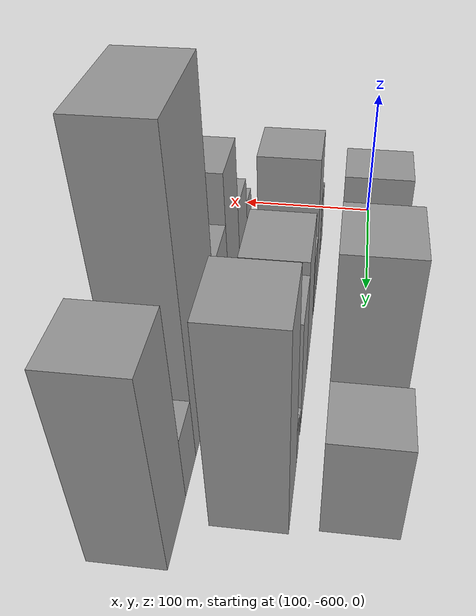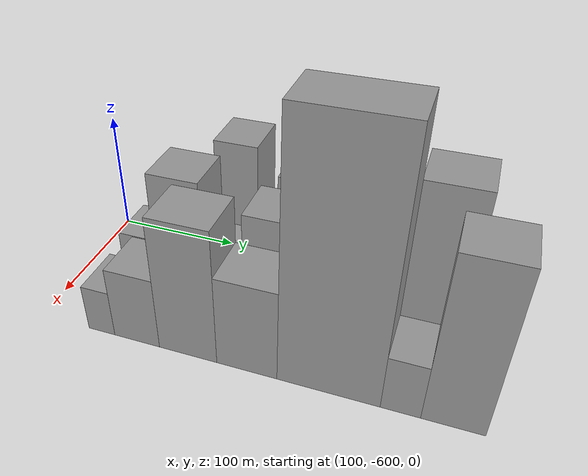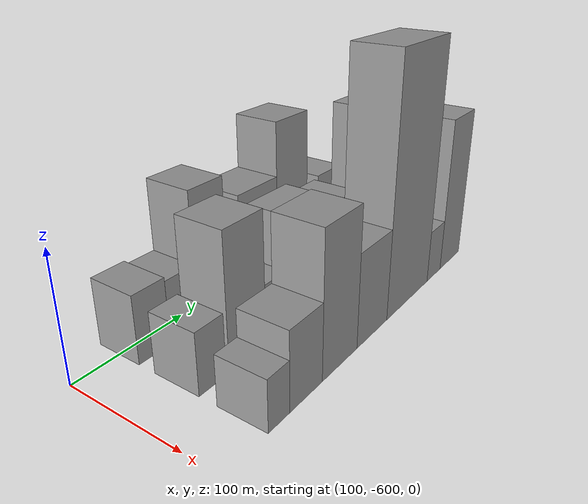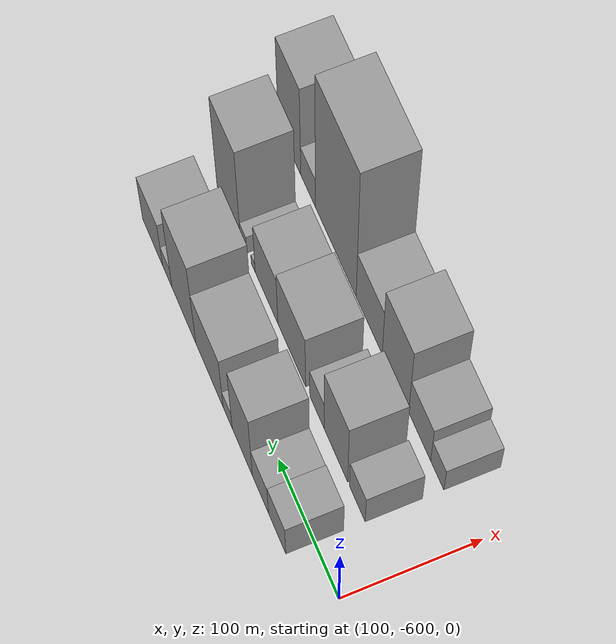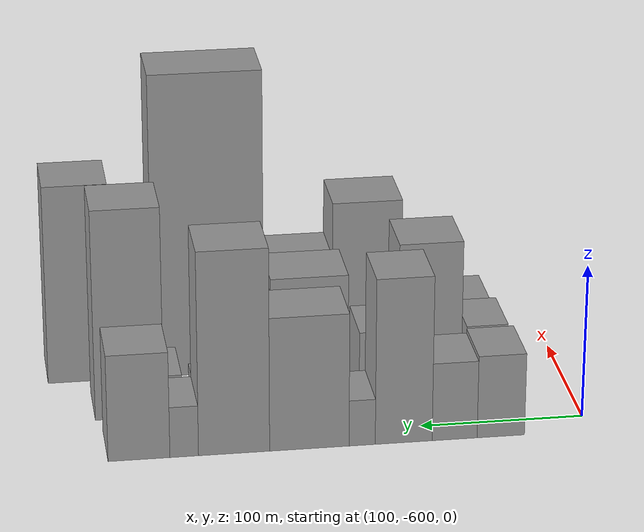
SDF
<sdf version="1.6">
 <world name="default">
  <model name="building_1">
   <static>1</static>
   <pose>100.0000 -545.5003 0 0.000000 0.000000 0.000000</pose>
   <link name="link">
    <pose>0 0 27.00 0 0 0</pose>
    <collision name="collision"><geometry><box><size>40.0000 28.9993 54.0000</size></box></geometry></collision>
    <visual name="visual">
     <cast_shadows>0</cast_shadows>
     <geometry><box><size>40.0000 28.9993 54.0000</size></box></geometry>
     <material>
      <script>
       <uri>model://grey_wall/materials/scripts</uri>
       <uri>model://grey_wall/materials/textures</uri>
       <name>vrc/grey_wall</name>
      </script>
     </material>
    </visual>
   </link>
  </model>
  <model name="building_2">
   <static>1</static>
   <pose>100.0000 -517.2635 0 0.000000 0.000000 0.000000</pose>
   <link name="link">
    <pose>0 0 25.50 0 0 0</pose>
    <collision name="collision"><geometry><box><size>40.0000 27.4744 51.0000</size></box></geometry></collision>
    <visual name="visual">
     <cast_shadows>0</cast_shadows>
     <geometry><box><size>40.0000 27.4744 51.0000</size></box></geometry>
     <material>
      <script>
       <uri>model://grey_wall/materials/scripts</uri>
       <uri>model://grey_wall/materials/textures</uri>
       <name>vrc/grey_wall</name>
      </script>
     </material>
    </visual>
   </link>
  </model>
  <model name="building_3">
   <static>1</static>
   <pose>100.0000 -486.2706 0 0.000000 0.000000 0.000000</pose>
   <link name="link">
    <pose>0 0 54.00 0 0 0</pose>
    <collision name="collision"><geometry><box><size>40.0000 34.5114 108.0000</size></box></geometry></collision>
    <visual name="visual">
     <cast_shadows>0</cast_shadows>
     <geometry><box><size>40.0000 34.5114 108.0000</size></box></geometry>
     <material>
      <script>
       <uri>model://grey_wall/materials/scripts</uri>
       <uri>model://grey_wall/materials/textures</uri>
       <name>vrc/grey_wall</name>
      </script>
     </material>
    </visual>
   </link>
  </model>
  <model name="building_4">
   <static>1</static>
   <pose>100.0000 -461.0871 0 0.000000 0.000000 0.000000</pose>
   <link name="link">
    <pose>0 0 15.00 0 0 0</pose>
    <collision name="collision"><geometry><box><size>40.0000 15.8557 30.0000</size></box></geometry></collision>
    <visual name="visual">
     <cast_shadows>0</cast_shadows>
     <geometry><box><size>40.0000 15.8557 30.0000</size></box></geometry>
     <material>
      <script>
       <uri>model://grey_wall/materials/scripts</uri>
       <uri>model://grey_wall/materials/textures</uri>
       <name>vrc/grey_wall</name>
      </script>
     </material>
    </visual>
   </link>
  </model>
  <model name="building_5">
   <static>1</static>
   <pose>100.0000 -429.2279 0 0.000000 0.000000 0.000000</pose>
   <link name="link">
    <pose>0 0 43.50 0 0 0</pose>
    <collision name="collision"><geometry><box><size>40.0000 47.8626 87.0000</size></box></geometry></collision>
    <visual name="visual">
     <cast_shadows>0</cast_shadows>
     <geometry><box><size>40.0000 47.8626 87.0000</size></box></geometry>
     <material>
      <script>
       <uri>model://grey_wall/materials/scripts</uri>
       <uri>model://grey_wall/materials/textures</uri>
       <name>vrc/grey_wall</name>
      </script>
     </material>
    </visual>
   </link>
  </model>
  <model name="building_6">
   <static>1</static>
   <pose>100.0000 -384.0020 0 0.000000 0.000000 0.000000</pose>
   <link name="link">
    <pose>0 0 66.00 0 0 0</pose>
    <collision name="collision"><geometry><box><size>40.0000 42.5892 132.0000</size></box></geometry></collision>
    <visual name="visual">
     <cast_shadows>0</cast_shadows>
     <geometry><box><size>40.0000 42.5892 132.0000</size></box></geometry>
     <material>
      <script>
       <uri>model://grey_wall/materials/scripts</uri>
       <uri>model://grey_wall/materials/textures</uri>
       <name>vrc/grey_wall</name>
      </script>
     </material>
    </visual>
   </link>
  </model>
  <model name="building_7">
   <static>1</static>
   <pose>100.0000 -354.1852 0 0.000000 0.000000 0.000000</pose>
   <link name="link">
    <pose>0 0 16.50 0 0 0</pose>
    <collision name="collision"><geometry><box><size>40.0000 17.0444 33.0000</size></box></geometry></collision>
    <visual name="visual">
     <cast_shadows>0</cast_shadows>
     <geometry><box><size>40.0000 17.0444 33.0000</size></box></geometry>
     <material>
      <script>
       <uri>model://grey_wall/materials/scripts</uri>
       <uri>model://grey_wall/materials/textures</uri>
       <name>vrc/grey_wall</name>
      </script>
     </material>
    </visual>
   </link>
  </model>
  <model name="building_8">
   <static>1</static>
   <pose>100.0000 -327.2966 0 0.000000 0.000000 0.000000</pose>
   <link name="link">
    <pose>0 0 34.50 0 0 0</pose>
    <collision name="collision"><geometry><box><size>40.0000 36.7328 69.0000</size></box></geometry></collision>
    <visual name="visual">
     <cast_shadows>0</cast_shadows>
     <geometry><box><size>40.0000 36.7328 69.0000</size></box></geometry>
     <material>
      <script>
       <uri>model://grey_wall/materials/scripts</uri>
       <uri>model://grey_wall/materials/textures</uri>
       <name>vrc/grey_wall</name>
      </script>
     </material>
    </visual>
   </link>
  </model>
  <model name="building_35">
   <static>1</static>
   <pose>155.0000 -547.1190 0 0.000000 0.000000 0.000000</pose>
   <link name="link">
    <pose>0 0 24.00 0 0 0</pose>
    <collision name="collision"><geometry><box><size>40.0000 25.7619 48.0000</size></box></geometry></collision>
    <visual name="visual">
     <cast_shadows>0</cast_shadows>
     <geometry><box><size>40.0000 25.7619 48.0000</size></box></geometry>
     <material>
      <script>
       <uri>model://grey_wall/materials/scripts</uri>
       <uri>model://grey_wall/materials/textures</uri>
       <name>vrc/grey_wall</name>
      </script>
     </material>
    </visual>
   </link>
  </model>
  <model name="building_36">
   <static>1</static>
   <pose>155.0000 -511.6188 0 0.000000 0.000000 0.000000</pose>
   <link name="link">
    <pose>0 0 52.50 0 0 0</pose>
    <collision name="collision"><geometry><box><size>40.0000 39.2385 105.0000</size></box></geometry></collision>
    <visual name="visual">
     <cast_shadows>0</cast_shadows>
     <geometry><box><size>40.0000 39.2385 105.0000</size></box></geometry>
     <material>
      <script>
       <uri>model://grey_wall/materials/scripts</uri>
       <uri>model://grey_wall/materials/textures</uri>
       <name>vrc/grey_wall</name>
      </script>
     </material>
    </visual>
   </link>
  </model>
  <model name="building_37">
   <static>1</static>
   <pose>155.0000 -479.9072 0 0.000000 0.000000 0.000000</pose>
   <link name="link">
    <pose>0 0 24.00 0 0 0</pose>
    <collision name="collision"><geometry><box><size>40.0000 24.1847 48.0000</size></box></geometry></collision>
    <visual name="visual">
     <cast_shadows>0</cast_shadows>
     <geometry><box><size>40.0000 24.1847 48.0000</size></box></geometry>
     <material>
      <script>
       <uri>model://grey_wall/materials/scripts</uri>
       <uri>model://grey_wall/materials/textures</uri>
       <name>vrc/grey_wall</name>
      </script>
     </material>
    </visual>
   </link>
  </model>
  <model name="building_38">
   <static>1</static>
   <pose>155.0000 -436.9973 0 0.000000 0.000000 0.000000</pose>
   <link name="link">
    <pose>0 0 43.50 0 0 0</pose>
    <collision name="collision"><geometry><box><size>40.0000 47.6350 87.0000</size></box></geometry></collision>
    <visual name="visual">
     <cast_shadows>0</cast_shadows>
     <geometry><box><size>40.0000 47.6350 87.0000</size></box></geometry>
     <material>
      <script>
       <uri>model://grey_wall/materials/scripts</uri>
       <uri>model://grey_wall/materials/textures</uri>
       <name>vrc/grey_wall</name>
      </script>
     </material>
    </visual>
   </link>
  </model>
  <model name="building_39">
   <static>1</static>
   <pose>155.0000 -393.3762 0 0.000000 0.000000 0.000000</pose>
   <link name="link">
    <pose>0 0 39.00 0 0 0</pose>
    <collision name="collision"><geometry><box><size>40.0000 39.6071 78.0000</size></box></geometry></collision>
    <visual name="visual">
     <cast_shadows>0</cast_shadows>
     <geometry><box><size>40.0000 39.6071 78.0000</size></box></geometry>
     <material>
      <script>
       <uri>model://grey_wall/materials/scripts</uri>
       <uri>model://grey_wall/materials/textures</uri>
       <name>vrc/grey_wall</name>
      </script>
     </material>
    </visual>
   </link>
  </model>
  <model name="building_40">
   <static>1</static>
   <pose>155.0000 -370.1084 0 0.000000 0.000000 0.000000</pose>
   <link name="link">
    <pose>0 0 7.50 0 0 0</pose>
    <collision name="collision"><geometry><box><size>40.0000 6.9285 15.0000</size></box></geometry></collision>
    <visual name="visual">
     <cast_shadows>0</cast_shadows>
     <geometry><box><size>40.0000 6.9285 15.0000</size></box></geometry>
     <material>
      <script>
       <uri>model://grey_wall/materials/scripts</uri>
       <uri>model://grey_wall/materials/textures</uri>
       <name>vrc/grey_wall</name>
      </script>
     </material>
    </visual>
   </link>
  </model>
  <model name="building_41">
   <static>1</static>
   <pose>155.0000 -352.9498 0 0.000000 0.000000 0.000000</pose>
   <link name="link">
    <pose>0 0 13.50 0 0 0</pose>
    <collision name="collision"><geometry><box><size>40.0000 11.3888 27.0000</size></box></geometry></collision>
    <visual name="visual">
     <cast_shadows>0</cast_shadows>
     <geometry><box><size>40.0000 11.3888 27.0000</size></box></geometry>
     <material>
      <script>
       <uri>model://grey_wall/materials/scripts</uri>
       <uri>model://grey_wall/materials/textures</uri>
       <name>vrc/grey_wall</name>
      </script>
     </material>
    </visual>
   </link>
  </model>
  <model name="building_42">
   <static>1</static>
   <pose>155.0000 -326.3891 0 0.000000 0.000000 0.000000</pose>
   <link name="link">
    <pose>0 0 69.00 0 0 0</pose>
    <collision name="collision"><geometry><box><size>40.0000 41.7327 138.0000</size></box></geometry></collision>
    <visual name="visual">
     <cast_shadows>0</cast_shadows>
     <geometry><box><size>40.0000 41.7327 138.0000</size></box></geometry>
     <material>
      <script>
       <uri>model://grey_wall/materials/scripts</uri>
       <uri>model://grey_wall/materials/textures</uri>
       <name>vrc/grey_wall</name>
      </script>
     </material>
    </visual>
   </link>
  </model>
  <model name="building_68">
   <static>1</static>
   <pose>210.0000 -549.3509 0 0.000000 0.000000 0.000000</pose>
   <link name="link">
    <pose>0 0 19.50 0 0 0</pose>
    <collision name="collision"><geometry><box><size>40.0000 21.2982 39.0000</size></box></geometry></collision>
    <visual name="visual">
     <cast_shadows>0</cast_shadows>
     <geometry><box><size>40.0000 21.2982 39.0000</size></box></geometry>
     <material>
      <script>
       <uri>model://grey_wall/materials/scripts</uri>
       <uri>model://grey_wall/materials/textures</uri>
       <name>vrc/grey_wall</name>
      </script>
     </material>
    </visual>
   </link>
  </model>
  <model name="building_69">
   <static>1</static>
   <pose>210.0000 -520.8496 0 0.000000 0.000000 0.000000</pose>
   <link name="link">
    <pose>0 0 30.00 0 0 0</pose>
    <collision name="collision"><geometry><box><size>40.0000 35.7044 60.0000</size></box></geometry></collision>
    <visual name="visual">
     <cast_shadows>0</cast_shadows>
     <geometry><box><size>40.0000 35.7044 60.0000</size></box></geometry>
     <material>
      <script>
       <uri>model://grey_wall/materials/scripts</uri>
       <uri>model://grey_wall/materials/textures</uri>
       <name>vrc/grey_wall</name>
      </script>
     </material>
    </visual>
   </link>
  </model>
  <model name="building_70">
   <static>1</static>
   <pose>210.0000 -481.1012 0 0.000000 0.000000 0.000000</pose>
   <link name="link">
    <pose>0 0 55.50 0 0 0</pose>
    <collision name="collision"><geometry><box><size>40.0000 43.7924 111.0000</size></box></geometry></collision>
    <visual name="visual">
     <cast_shadows>0</cast_shadows>
     <geometry><box><size>40.0000 43.7924 111.0000</size></box></geometry>
     <material>
      <script>
       <uri>model://grey_wall/materials/scripts</uri>
       <uri>model://grey_wall/materials/textures</uri>
       <name>vrc/grey_wall</name>
      </script>
     </material>
    </visual>
   </link>
  </model>
  <model name="building_71">
   <static>1</static>
   <pose>210.0000 -437.4223 0 0.000000 0.000000 0.000000</pose>
   <link name="link">
    <pose>0 0 37.50 0 0 0</pose>
    <collision name="collision"><geometry><box><size>40.0000 43.5653 75.0000</size></box></geometry></collision>
    <visual name="visual">
     <cast_shadows>0</cast_shadows>
     <geometry><box><size>40.0000 43.5653 75.0000</size></box></geometry>
     <material>
      <script>
       <uri>model://grey_wall/materials/scripts</uri>
       <uri>model://grey_wall/materials/textures</uri>
       <name>vrc/grey_wall</name>
      </script>
     </material>
    </visual>
   </link>
  </model>
  <model name="building_72">
   <static>1</static>
   <pose>210.0000 -380.7167 0 0.000000 0.000000 0.000000</pose>
   <link name="link">
    <pose>0 0 100.50 0 0 0</pose>
    <collision name="collision"><geometry><box><size>40.0000 69.8461 201.0000</size></box></geometry></collision>
    <visual name="visual">
     <cast_shadows>0</cast_shadows>
     <geometry><box><size>40.0000 69.8461 201.0000</size></box></geometry>
     <material>
      <script>
       <uri>model://grey_wall/materials/scripts</uri>
       <uri>model://grey_wall/materials/textures</uri>
       <name>vrc/grey_wall</name>
      </script>
     </material>
    </visual>
   </link>
  </model>
  <model name="building_73">
   <static>1</static>
   <pose>210.0000 -332.9124 0 0.000000 0.000000 0.000000</pose>
   <link name="link">
    <pose>0 0 22.50 0 0 0</pose>
    <collision name="collision"><geometry><box><size>40.0000 25.7624 45.0000</size></box></geometry></collision>
    <visual name="visual">
     <cast_shadows>0</cast_shadows>
     <geometry><box><size>40.0000 25.7624 45.0000</size></box></geometry>
     <material>
      <script>
       <uri>model://grey_wall/materials/scripts</uri>
       <uri>model://grey_wall/materials/textures</uri>
       <name>vrc/grey_wall</name>
      </script>
     </material>
    </visual>
   </link>
  </model>
  <model name="building_74">
   <static>1</static>
   <pose>210.0000 -300.0925 0 0.000000 0.000000 0.000000</pose>
   <link name="link">
    <pose>0 0 66.00 0 0 0</pose>
    <collision name="collision"><geometry><box><size>40.0000 39.8774 132.0000</size></box></geometry></collision>
    <visual name="visual">
     <cast_shadows>0</cast_shadows>
     <geometry><box><size>40.0000 39.8774 132.0000</size></box></geometry>
     <material>
      <script>
       <uri>model://grey_wall/materials/scripts</uri>
       <uri>model://grey_wall/materials/textures</uri>
       <name>vrc/grey_wall</name>
      </script>
     </material>
    </visual>
   </link>
  </model>
 </world>
</sdf>
